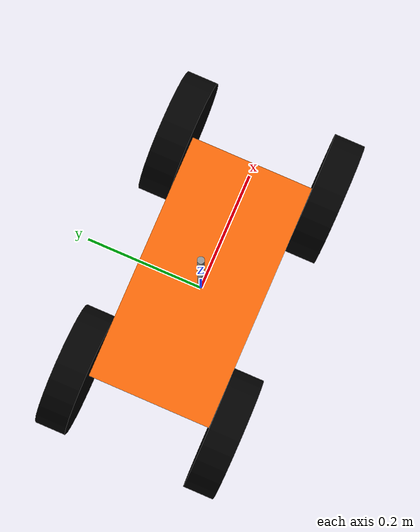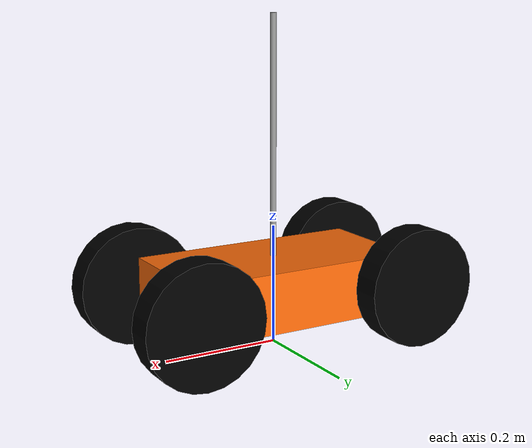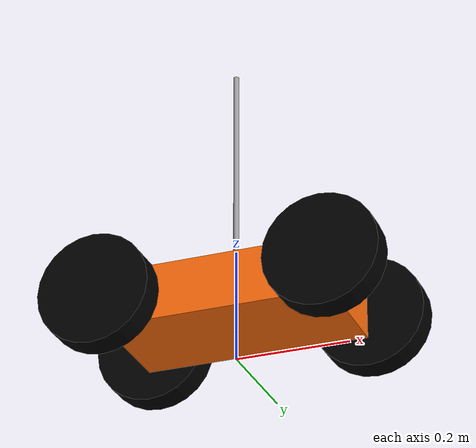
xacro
<?xml version="1.0"?>
<robot name="mybot" xmlns:xacro="http://www.ros.org/wiki/xacro">

	<!-- Files to be included -->

	<xacro:include filename="$(find cart_pole)/urdf/wheels.xacro" />

	<!-- Physical properties of the robot -->

	<xacro:property name="PI" value="3.1415926535897931"/>

	<xacro:property name="chassisHeight" value="0.1"/>
	<xacro:property name="chassisLength" value="0.4"/>
	<xacro:property name="chassisWidth" value="0.2"/>
	<xacro:property name="chassisMass" value="1"/>

	<xacro:property name="rodLength" value="0.5"/>
	<xacro:property name="rodRadius" value="0.005"/>
	<xacro:property name="rodMass" value="0.1"/>
	<xacro:property name="rodAngleLimit" value="12"/>

	<xacro:property name="casterRadius" value="0.05"/>
	<xacro:property name="casterMass" value="0.1"/>

	<xacro:property name="wheelWidth" value="0.05"/>
	<xacro:property name="wheelRadius" value="0.1"/>
	<xacro:property name="wheelPos" value="0.2"/>
	<xacro:property name="wheelMass" value="0.1"/>

  <!-- Inertia description -->

	<macro name="box_inertia" params="m x y z">
	<inertia  ixx="${m*(y*y+z*z)/12}" ixy = "0" ixz = "0"
	iyy="${m*(x*x+z*z)/12}" iyz = "0"
	izz="${m*(x*x+z*z)/12}"
	/>
	</macro>

	<macro name="sphere_inertia" params="m r">
	<inertia  ixx="${2*m*r*r/5}" ixy = "0" ixz = "0"
	iyy="${2*m*r*r/5}" iyz = "0"
	izz="${2*m*r*r/5}"
	/>
	</macro>

	<macro name="cylinder_inertia" params="m r h">
		<inertia  ixx="${m*(3*r*r+h*h)/12}" ixy = "0" ixz = "0"
			iyy="${m*(3*r*r+h*h)/12}" iyz = "0"
			izz="${m*r*r/2}"
		/>wheelPos
	</macro>

	<!-- Materials description -->

	<material name="black">
	  <color rgba="0.0 0.0 0.0 1.0"/>
	</material>

	<material name="blue">
	  <color rgba="0.0 0.0 0.8 1.0"/>
	</material>
wheelPos
	<material name="green">
	  <color rgba="0.0 0.8 0.0 1.0"/>
	</material>

	<material name="grey">
	  <color rgba="0.2 0.2 0.2 1.0"/>
	</material>

	<material name="orange">
	  <color rgba="${255/255} ${108/255} ${10/255} 1.0"/>
	</material>

	<material name="brown">
	  <color rgba="${222/255} ${207/255} ${195/255} 1.0"/>
	</material>

	<material name="red">
	  <color rgba="0.8 0.0 0.0 1.0"/>
	</material>

	<material name="white">
	  <color rgba="1.0 1.0 1.0 1.0"/>
	</material>
wheelPos
	<!-- Link and joint for the base_link -->

	<link name="footprint" >
		<inertial>
      <mass value="0.0001"/>
      <origin xyz="0 0 0"/>
      <inertia ixx="0.0001" ixy="0.0" ixz="0.0" iyy="0.0001" iyz="0.0" izz="0.0001"/>
    </inertial>
    <visual>
      <origin xyz="0 0 0" rpy="0 0 0"/>
      <geometry>
        <box size="0.001 0.001 0.001"/>
      </geometry>
    </visual>
  </link>
wheelPos
  <gazebo reference="footprint">
    <turnGravityOff>false</turnGravityOff>
  </gazebo>

	<joint name="base_joint" type="fixed">
	  <parent link="footprint"/>
	  <child link="chassis"/>
	</joint>

	<!-- Link for the base chasis -->

	<link name='chassis'>
	  <collision>
	    <origin xyz="0 0 ${wheelRadius}" rpy="0 0 0"/>
	    <geometry>
	      <box size="${chassisLength} ${chassisWidth} ${chassisHeight}"/>
	    </geometry>
	  </collision>
	  <visual>
	    <origin xyz="0 0 ${wheelRadius}" rpy="0 0 0"/>
	    <geometry>
	      <box size="${chassisLength} ${chassisWidth} ${chassisHeight}"/>
	    </geometry>
	    <material name="orange"/>wheelPos
	  </visual>
	  <inertial>
	    <origin xyz="0 0 ${wheelRadius}" rpy="0 0 0"/>
	    <mass value="${chassisMass}"/>
	    <box_inertia m="${chassisMass}" x="${chassisLength}" y="${chassisWidth}" z="${chassisHeight}"/>
	  </inertial>
	</link>

	<!-- Gazebo referance for chassis -->
	<gazebo reference="chassis">
		<material>Gazebo/Orange</material>
	</gazebo>

  <!-- Attach Pendulum to top of Chassis Assembly -->
  <link name="rod_link">
    <visual>
      <geometry>
        <cylinder length="${rodLength}" radius="${rodRadius}"/>
      </geometry>
      <origin xyz="0 0 ${chassisHeight*2}"/>
      <material name="gray"/>
    </visual>
    <collision>
      <geometry>
        <cylinder length="${rodLength}" radius="${rodRadius}"/>
      </geometry>
      <origin rpy="0 0 ${PI/2}" xyz="0 0 ${chassisHeight*2}"/>
    </collision>
    <inertial>
      <origin rpy="0 0 ${PI/2}" xyz="0 0 ${chassisHeight*2}"/>
      <mass value="${rodMass}"/>
      <cylinder_inertia m="${rodMass}" r="${rodRadius}" h="${rodLength}"/>
    </inertial>
  </link>
  <joint name="rod_to_chassis" type="revolute">
    <parent link="chassis"/>
    <child link="rod_link"/>
    <axis xyz="0 1 0"/>
    <limit effort="1000.0" lower="${-rodAngleLimit*PI/180}" upper="${rodAngleLimit*PI/180}" velocity="0.5"/>
    <origin xyz="0 0 ${chassisHeight}"/>
  </joint>
	<!-- Gazebo referance for rod -->
	<gazebo reference="rod_link">
		<material>Gazebo/Black</material>
	</gazebo>

	<!-- Wheel description -->
	<wheel lr="left" tY="1" fY="1"/>
	<wheel lr="right" tY="-1" fY="1"/>
	<!-- Wheel description -->
	<wheel lr="left_back" tY="1" fY="-1"/>
	<wheel lr="right_back" tY="-1" fY="-1"/>

	<!-- DIFFERENTIAL DRIVE CONTROLLER -->
  <gazebo>
    <plugin name="differential_drive_controller" filename="libgazebo_ros_diff_drive.so">
      <rosDebugLevel>Debug</rosDebugLevel>
      <publishWheelTF>false</publishWheelTF>
			<legacyMode>false</legacyMode>
      <robotNamespace>/mybot</robotNamespace>
      <publishTF>1</publishTF>
      <publishWheelJointState>false</publishWheelJointState>
      <alwaysOn>true</alwaysOn>
      <updateRate>100.0</updateRate>
      <leftJoint>left_wheel_hinge</leftJoint>
      <rightJoint>right_wheel_hinge</rightJoint>
      <wheelSeparation>${chassisWidth}</wheelSeparation>
      <wheelDiameter>${2*wheelRadius}</wheelDiameter>
      <broadcastTF>1</broadcastTF>
      <wheelTorque>10</wheelTorque>
      <wheelAcceleration>5</wheelAcceleration>
      <commandTopic>cmd_vel</commandTopic>
      <odometryFrame>odom</odometryFrame>
      <odometryTopic>odom</odometryTopic>
      <robotBaseFrame>footprint</robotBaseFrame>
    </plugin>
  </gazebo>

	<gazebo>
	 <plugin name="joint_state_publisher" filename="libgazebo_ros_joint_state_publisher.so">
		 <robotNamespace>/mybot</robotNamespace>
		 <jointName>rod_to_chassis</jointName>
		 <updateRate>10.0</updateRate>
		 <alwaysOn>true</alwaysOn>
	 </plugin>
</gazebo>

</robot>

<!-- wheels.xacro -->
<robot name="mybot" xmlns:xacro="http://www.ros.org/wiki/xacro">

        <!-- Inertia description -->

	<macro name="cylinder_inertia" params="m r h">
	  <inertia  ixx="${m*(3*r*r+h*h)/12}" ixy = "0" ixz = "0"
	    iyy="${m*(3*r*r+h*h)/12}" iyz = "0"
	    izz="${m*r*r/2}"
	  />
	</macro>

	<macro name="wheel" params="lr tY fY">

	<link name="${lr}_wheel">
	  <collision>
	    <origin xyz="0 0 0" rpy="0 ${PI/2} ${PI/2}" />
	    <geometry>
	      <cylinder length="${wheelWidth}" radius="${wheelRadius}"/>
	    </geometry>
	  </collision>

	  <visual>
	    <origin xyz="0 0 0" rpy="0 ${PI/2} ${PI/2}" />
	    <geometry>
	      <cylinder length="${wheelWidth}" radius="${wheelRadius}"/>
	    </geometry>
	    <material name="black"/>
	  </visual>

	  <inertial>
	    <origin xyz="0 0 0" rpy="0 ${PI/2} ${PI/2}" />
	    <mass value="${wheelMass}"/>
	    <cylinder_inertia m="${wheelMass}" r="${wheelRadius}" h="${wheelWidth}"/>
	  </inertial>
	</link>

	<gazebo reference="${lr}_wheel">
	  <mu1 value="1.5"/>
	  <mu2 value="10000000.0"/>
	  <kp  value="10000000.0" />
	  <kd  value="1.0" />
	  <fdir1 value="1 0 0"/>
	  <material>Gazebo/Black</material>
    <turnGravityOff>false</turnGravityOff>
	</gazebo>

	<joint name="${lr}_wheel_hinge" type="continuous">
	  <parent link="chassis"/>
	  <child link="${lr}_wheel"/>
	  <origin xyz="${fY*chassisLength/2} ${tY*wheelWidth/2+tY*chassisWidth/2} ${wheelRadius}" rpy="0 0 0" />
	  <axis xyz="0 1 0" rpy="0 0 0" />
	  <limit effort="100" velocity="100"/>
	  <joint_properties damping="0.0" friction="0.0"/>
	</joint>

	<!-- Transmission -->
	<transmission name="${lr}_trans">
	  <type>transmission_interface/SimpleTransmission</type>
	  <joint name="${lr}_wheel_hinge">
    	<hardwareInterface>EffortJointInterface</hardwareInterface>
		</joint>
	  <actuator name="${lr}Motor">
	    <hardwareInterface>EffortJointInterface</hardwareInterface>
	    <mechanicalReduction>1</mechanicalReduction>
	  </actuator>
	</transmission>

	</macro>
</robot>
